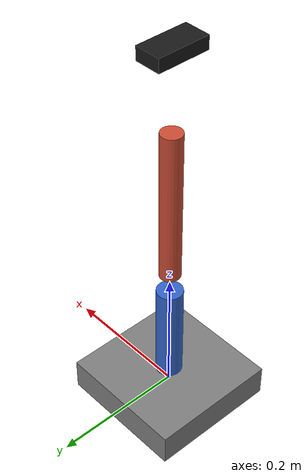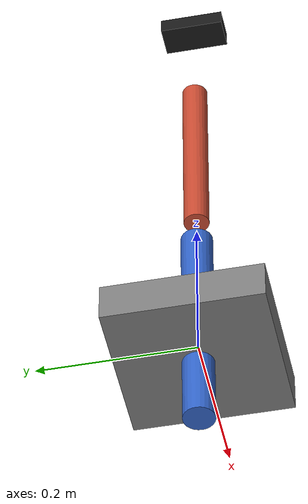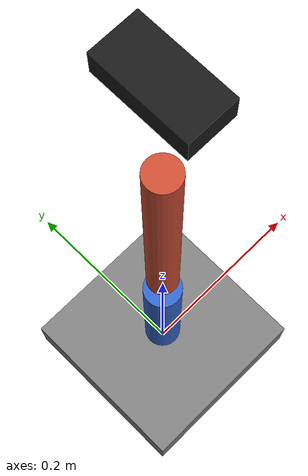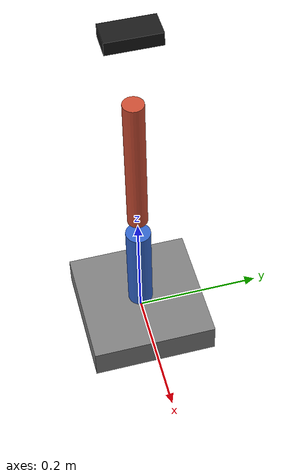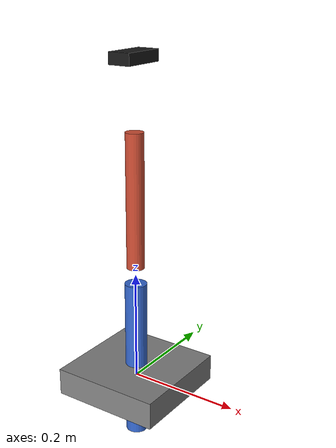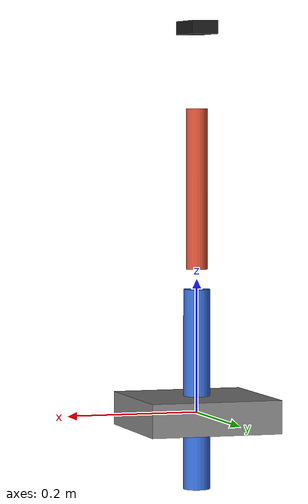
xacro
<?xml version="1.0"?>
<robot name="test_robot" xmlns:xacro="http://www.ros.org/wiki/xacro">

  <!-- Properties -->
  <xacro:property name="base_width" value="0.2"/>
  <xacro:property name="base_height" value="0.05"/>
  <xacro:property name="arm_length" value="0.3"/>
  <xacro:property name="arm_radius" value="0.02"/>
  <xacro:property name="pi" value="3.14159265359"/>

  <!-- Macro for a simple link -->
  <xacro:macro name="simple_link" params="name length radius color_r color_g color_b">
    <link name="${name}">
      <inertial>
        <mass value="0.5"/>
        <inertia ixx="0.001" ixy="0" ixz="0" iyy="0.001" iyz="0" izz="0.001"/>
      </inertial>
      <visual>
        <geometry>
          <cylinder radius="${radius}" length="${length}"/>
        </geometry>
        <material name="${name}_mat">
          <color rgba="${color_r} ${color_g} ${color_b} 1"/>
        </material>
      </visual>
    </link>
  </xacro:macro>

  <!-- Macro for a revolute joint -->
  <xacro:macro name="revolute_joint" params="name parent child x y z">
    <joint name="${name}" type="revolute">
      <parent link="${parent}"/>
      <child link="${child}"/>
      <origin xyz="${x} ${y} ${z}" rpy="0 0 0"/>
      <axis xyz="0 1 0"/>
      <limit lower="${-pi/2}" upper="${pi/2}" effort="10" velocity="1"/>
    </joint>
  </xacro:macro>

  <!-- Base link -->
  <link name="base_link">
    <inertial>
      <mass value="2.0"/>
      <inertia ixx="0.01" ixy="0" ixz="0" iyy="0.01" iyz="0" izz="0.01"/>
    </inertial>
    <visual>
      <geometry>
        <box size="${base_width} ${base_width} ${base_height}"/>
      </geometry>
      <material name="grey">
        <color rgba="0.5 0.5 0.5 1"/>
      </material>
    </visual>
  </link>

  <!-- Use macros to create arm links -->
  <xacro:simple_link name="upper_arm" length="${arm_length}" radius="${arm_radius}" color_r="0.2" color_g="0.4" color_b="0.8"/>
  <xacro:simple_link name="lower_arm" length="${arm_length * 0.8}" radius="${arm_radius * 0.8}" color_r="0.8" color_g="0.3" color_b="0.2"/>

  <!-- Joints -->
  <xacro:revolute_joint name="shoulder" parent="base_link" child="upper_arm" x="0" y="0" z="${base_height/2 + 0.01}"/>
  <xacro:revolute_joint name="elbow" parent="upper_arm" child="lower_arm" x="0" y="0" z="${arm_length}"/>

  <!-- Conditional: add gripper if enabled -->
  <xacro:property name="has_gripper" value="true"/>
  <xacro:if value="${has_gripper}">
    <link name="gripper">
      <visual>
        <geometry>
          <box size="0.04 0.08 0.02"/>
        </geometry>
        <material name="dark">
          <color rgba="0.1 0.1 0.1 1"/>
        </material>
      </visual>
    </link>
    <joint name="gripper_joint" type="fixed">
      <parent link="lower_arm"/>
      <child link="gripper"/>
      <origin xyz="0 0 ${arm_length * 0.8}" rpy="0 0 0"/>
    </joint>
  </xacro:if>

</robot>
